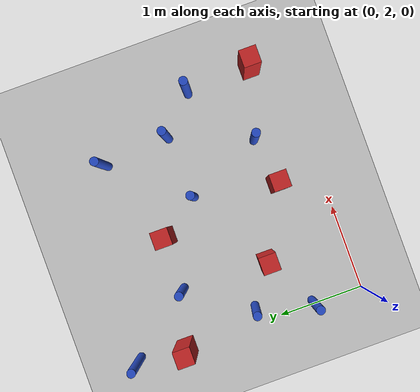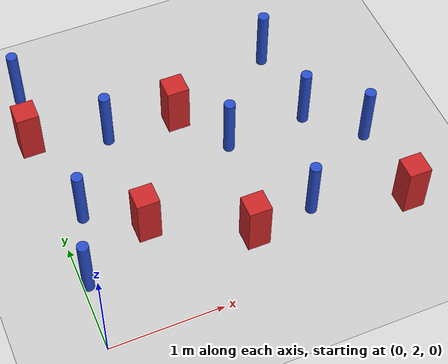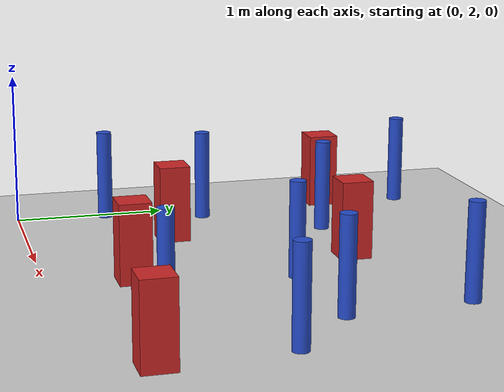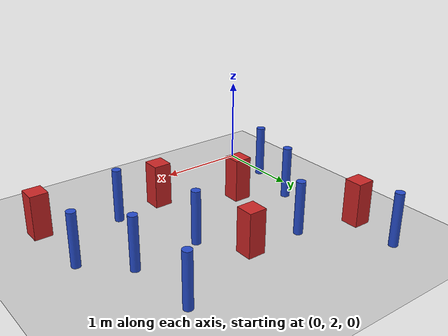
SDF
<sdf version="1.6">
 <world name="default">
  <model name="ground_plane">
   <static>1</static>
   <link name="link">
    <collision name="collision">
     <geometry><plane><normal>0 0 1</normal><size>100 100</size></plane></geometry>
     <surface><friction><ode><mu>100</mu><mu2>50</mu2></ode></friction></surface>
    </collision>
    <visual name="visual">
     <cast_shadows>0</cast_shadows>
     <geometry><plane><normal>0 0 1</normal><size>100 100</size></plane></geometry>
     <material>
      <ambient>1.0 1.0 1.0 1.0</ambient>
      <diffuse>0.8 0.8 0.8 1.0</diffuse>
      <specular>0.01 0.01 0.01 1.000000</specular>
     </material>
    </visual>
   </link>
  </model>
  <model name="pole_obstacle30">
   <static>true</static>
   <pose>2.41918449153 3.54463106303 2.88873142074e-08 -9.90536690232e-09 4.6021994898e-07 -1.20965994968e-07</pose>
   <link name="link">
    <pose>0 0 0.3 0 -0 0</pose>
    <inertial>
     <mass>1</mass>
     <inertia><ixx>0.145833</ixx><ixy>0</ixy><ixz>0</ixz><iyy>0.145833</iyy><iyz>0</iyz><izz>0.125</izz></inertia>
    </inertial>
    <collision name="collision">
     <geometry><cylinder><radius>0.05</radius><length>.6</length></cylinder></geometry>
    </collision>
    <visual name="visual">
     <geometry><cylinder><radius>0.05</radius><length>.6</length></cylinder></geometry>
     <material>
      <script><name>Gazebo/Blue</name><uri>file://media/materials/scripts/gazebo.material</uri></script>
     </material>
    </visual>
   </link>
  </model>
  <model name="pole_obstacle58">
   <static>true</static>
   <pose>2.35883688281 4.3297631418 2.88873142074e-08 -9.90536689859e-09 4.60219948989e-07 -1.20965994961e-07</pose>
   <link name="link">
    <pose>0 0 0.3 0 -0 0</pose>
    <inertial>
     <mass>1</mass>
     <inertia><ixx>0.145833</ixx><ixy>0</ixy><ixz>0</ixz><iyy>0.145833</iyy><iyz>0</iyz><izz>0.125</izz></inertia>
    </inertial>
    <collision name="collision">
     <geometry><cylinder><radius>0.05</radius><length>.6</length></cylinder></geometry>
    </collision>
    <visual name="visual">
     <geometry><cylinder><radius>0.05</radius><length>.6</length></cylinder></geometry>
     <material>
      <script><name>Gazebo/Blue</name><uri>file://media/materials/scripts/gazebo.material</uri></script>
     </material>
    </visual>
   </link>
  </model>
  <model name="pole_obstacle74">
   <static>true</static>
   <pose>0.701945826271 3.97241966983 2.88873142074e-08 -9.90536689658e-09 4.60219948993e-07 -1.20965994958e-07</pose>
   <link name="link">
    <pose>0 0 0.3 0 -0 0</pose>
    <inertial>
     <mass>1</mass>
     <inertia><ixx>0.145833</ixx><ixy>0</ixy><ixz>0</ixz><iyy>0.145833</iyy><iyz>0</iyz><izz>0.125</izz></inertia>
    </inertial>
    <collision name="collision">
     <geometry><cylinder><radius>0.05</radius><length>.6</length></cylinder></geometry>
    </collision>
    <visual name="visual">
     <geometry><cylinder><radius>0.05</radius><length>.6</length></cylinder></geometry>
     <material>
      <script><name>Gazebo/Blue</name><uri>file://media/materials/scripts/gazebo.material</uri></script>
     </material>
    </visual>
   </link>
  </model>
  <model name="pole_obstacle80">
   <static>true</static>
   <pose>0.217586208194 3.25701772054 2.88873142074e-08 -9.90536692545e-09 4.60219948925e-07 -1.2096599499e-07</pose>
   <link name="link">
    <pose>0 0 0.3 0 -0 0</pose>
    <inertial>
     <mass>1</mass>
     <inertia><ixx>0.145833</ixx><ixy>0</ixy><ixz>0</ixz><iyy>0.145833</iyy><iyz>0</iyz><izz>0.125</izz></inertia>
    </inertial>
    <collision name="collision">
     <geometry><cylinder><radius>0.05</radius><length>.6</length></cylinder></geometry>
    </collision>
    <visual name="visual">
     <geometry><cylinder><radius>0.05</radius><length>.6</length></cylinder></geometry>
     <material>
      <script><name>Gazebo/Blue</name><uri>file://media/materials/scripts/gazebo.material</uri></script>
     </material>
    </visual>
   </link>
  </model>
  <model name="square_post_obstacle81">
   <static>true</static>
   <pose>0.0384166265616 4.1695598879 8.22691968438e-08 7.2212513382e-06 -7.54495500217e-07 2.29674213826e-05</pose>
   <link name="link">
    <pose>0 0 0.25 0 -0 0</pose>
    <inertial>
     <mass>100</mass>
     <inertia>
      <ixx>0.166667</ixx>
      <ixy>0</ixy>
      <ixz>0</ixz>
      <iyy>0.166667</iyy>
      <iyz>0</iyz>
      <izz>0.166667</izz>
     </inertia>
    </inertial>
    <collision name="collision"><geometry><box><size>.2 .2 .5</size></box></geometry></collision>
    <visual name="visual">
     <geometry><box><size>.2 .2 .5</size></box></geometry>
     <material>
      <script><name>Gazebo/Red</name><uri>file://media/materials/scripts/gazebo.material</uri></script>
     </material>
    </visual>
   </link>
  </model>
  <model name="pole_obstacle139">
   <static>true</static>
   <pose>1.66911154547 3.49284591557 2.88873142074e-08 -9.90536689791e-09 4.6021994899e-07 -1.20965994959e-07</pose>
   <link name="link">
    <pose>0 0 0.3 0 -0 0</pose>
    <inertial>
     <mass>1</mass>
     <inertia><ixx>0.145833</ixx><ixy>0</ixy><ixz>0</ixz><iyy>0.145833</iyy><iyz>0</iyz><izz>0.125</izz></inertia>
    </inertial>
    <collision name="collision">
     <geometry><cylinder><radius>0.05</radius><length>.6</length></cylinder></geometry>
    </collision>
    <visual name="visual">
     <geometry><cylinder><radius>0.05</radius><length>.6</length></cylinder></geometry>
     <material>
      <script><name>Gazebo/Blue</name><uri>file://media/materials/scripts/gazebo.material</uri></script>
     </material>
    </visual>
   </link>
  </model>
  <model name="square_post_obstacle145">
   <static>true</static>
   <pose>0.681151888326 2.94164645576 8.22691968438e-08 7.2212513382e-06 -7.54495500217e-07 2.29674213826e-05</pose>
   <link name="link">
    <pose>0 0 0.25 0 -0 0</pose>
    <inertial>
     <mass>100</mass>
     <inertia>
      <ixx>0.166667</ixx>
      <ixy>0</ixy>
      <ixz>0</ixz>
      <iyy>0.166667</iyy>
      <iyz>0</iyz>
      <izz>0.166667</izz>
     </inertia>
    </inertial>
    <collision name="collision"><geometry><box><size>.2 .2 .5</size></box></geometry></collision>
    <visual name="visual">
     <geometry><box><size>.2 .2 .5</size></box></geometry>
     <material>
      <script><name>Gazebo/Red</name><uri>file://media/materials/scripts/gazebo.material</uri></script>
     </material>
    </visual>
   </link>
  </model>
  <model name="square_post_obstacle165">
   <static>true</static>
   <pose>1.34065891119 3.95821266245 8.22691968438e-08 7.2212513382e-06 -7.54495500217e-07 2.29674213826e-05</pose>
   <link name="link">
    <pose>0 0 0.25 0 -0 0</pose>
    <inertial>
     <mass>100</mass>
     <inertia>
      <ixx>0.166667</ixx>
      <ixy>0</ixy>
      <ixz>0</ixz>
      <iyy>0.166667</iyy>
      <iyz>0</iyz>
      <izz>0.166667</izz>
     </inertia>
    </inertial>
    <collision name="collision"><geometry><box><size>.2 .2 .5</size></box></geometry></collision>
    <visual name="visual">
     <geometry><box><size>.2 .2 .5</size></box></geometry>
     <material>
      <script><name>Gazebo/Red</name><uri>file://media/materials/scripts/gazebo.material</uri></script>
     </material>
    </visual>
   </link>
  </model>
  <model name="square_post_obstacle170">
   <static>true</static>
   <pose>1.49396436364 2.52564654548 8.22691968438e-08 7.2212513382e-06 -7.54495500217e-07 2.29674213826e-05</pose>
   <link name="link">
    <pose>0 0 0.25 0 -0 0</pose>
    <inertial>
     <mass>100</mass>
     <inertia>
      <ixx>0.166667</ixx>
      <ixy>0</ixy>
      <ixz>0</ixz>
      <iyy>0.166667</iyy>
      <iyz>0</iyz>
      <izz>0.166667</izz>
     </inertia>
    </inertial>
    <collision name="collision"><geometry><box><size>.2 .2 .5</size></box></geometry></collision>
    <visual name="visual">
     <geometry><box><size>.2 .2 .5</size></box></geometry>
     <material>
      <script><name>Gazebo/Red</name><uri>file://media/materials/scripts/gazebo.material</uri></script>
     </material>
    </visual>
   </link>
  </model>
  <model name="pole_obstacle174">
   <static>true</static>
   <pose>2.05839322315 2.60464863328 2.88873142074e-08 -9.90536690232e-09 4.6021994898e-07 -1.20965994968e-07</pose>
   <link name="link">
    <pose>0 0 0.3 0 -0 0</pose>
    <inertial>
     <mass>1</mass>
     <inertia><ixx>0.145833</ixx><ixy>0</ixy><ixz>0</ixz><iyy>0.145833</iyy><iyz>0</iyz><izz>0.125</izz></inertia>
    </inertial>
    <collision name="collision">
     <geometry><cylinder><radius>0.05</radius><length>.6</length></cylinder></geometry>
    </collision>
    <visual name="visual">
     <geometry><cylinder><radius>0.05</radius><length>.6</length></cylinder></geometry>
     <material>
      <script><name>Gazebo/Blue</name><uri>file://media/materials/scripts/gazebo.material</uri></script>
     </material>
    </visual>
   </link>
  </model>
  <model name="pole_obstacle198">
   <static>true</static>
   <pose>0.103311704769 4.72965145975 2.88873142074e-08 -9.90536689742e-09 4.60219948992e-07 -1.2096599496e-07</pose>
   <link name="link">
    <pose>0 0 0.3 0 -0 0</pose>
    <inertial>
     <mass>1</mass>
     <inertia><ixx>0.145833</ixx><ixy>0</ixy><ixz>0</ixz><iyy>0.145833</iyy><iyz>0</iyz><izz>0.125</izz></inertia>
    </inertial>
    <collision name="collision">
     <geometry><cylinder><radius>0.05</radius><length>.6</length></cylinder></geometry>
    </collision>
    <visual name="visual">
     <geometry><cylinder><radius>0.05</radius><length>.6</length></cylinder></geometry>
     <material>
      <script><name>Gazebo/Blue</name><uri>file://media/materials/scripts/gazebo.material</uri></script>
     </material>
    </visual>
   </link>
  </model>
  <model name="pole_obstacle207">
   <static>true</static>
   <pose>0.0464620259601 2.60246628661 2.88873142074e-08 -9.9053669241e-09 4.60219948928e-07 -1.20965994988e-07</pose>
   <link name="link">
    <pose>0 0 0.3 0 -0 0</pose>
    <inertial>
     <mass>1</mass>
     <inertia><ixx>0.145833</ixx><ixy>0</ixy><ixz>0</ixz><iyy>0.145833</iyy><iyz>0</iyz><izz>0.125</izz></inertia>
    </inertial>
    <collision name="collision">
     <geometry><cylinder><radius>0.05</radius><length>.6</length></cylinder></geometry>
    </collision>
    <visual name="visual">
     <geometry><cylinder><radius>0.05</radius><length>.6</length></cylinder></geometry>
     <material>
      <script><name>Gazebo/Blue</name><uri>file://media/materials/scripts/gazebo.material</uri></script>
     </material>
    </visual>
   </link>
  </model>
  <model name="square_post_obstacle221">
   <static>true</static>
   <pose>2.87266371031 2.37544960806 8.22691968438e-08 7.2212513382e-06 -7.54495500217e-07 2.29674213826e-05</pose>
   <link name="link">
    <pose>0 0 0.25 0 -0 0</pose>
    <inertial>
     <mass>100</mass>
     <inertia>
      <ixx>0.166667</ixx>
      <ixy>0</ixy>
      <ixz>0</ixz>
      <iyy>0.166667</iyy>
      <iyz>0</iyz>
      <izz>0.166667</izz>
     </inertia>
    </inertial>
    <collision name="collision"><geometry><box><size>.2 .2 .5</size></box></geometry></collision>
    <visual name="visual">
     <geometry><box><size>.2 .2 .5</size></box></geometry>
     <material>
      <script><name>Gazebo/Red</name><uri>file://media/materials/scripts/gazebo.material</uri></script>
     </material>
    </visual>
   </link>
  </model>
  <model name="pole_obstacle214">
   <static>true</static>
   <pose>2.84095000913 3.14693002041 2.88873142074e-08 -9.90536692158e-09 4.60219948934e-07 -1.20965994986e-07</pose>
   <link name="link">
    <pose>0 0 0.3 0 -0 0</pose>
    <inertial>
     <mass>1</mass>
     <inertia><ixx>0.145833</ixx><ixy>0</ixy><ixz>0</ixz><iyy>0.145833</iyy><iyz>0</iyz><izz>0.125</izz></inertia>
    </inertial>
    <collision name="collision">
     <geometry><cylinder><radius>0.05</radius><length>.6</length></cylinder></geometry>
    </collision>
    <visual name="visual">
     <geometry><cylinder><radius>0.05</radius><length>.6</length></cylinder></geometry>
     <material>
      <script><name>Gazebo/Blue</name><uri>file://media/materials/scripts/gazebo.material</uri></script>
     </material>
    </visual>
   </link>
  </model>
 </world>
</sdf>
